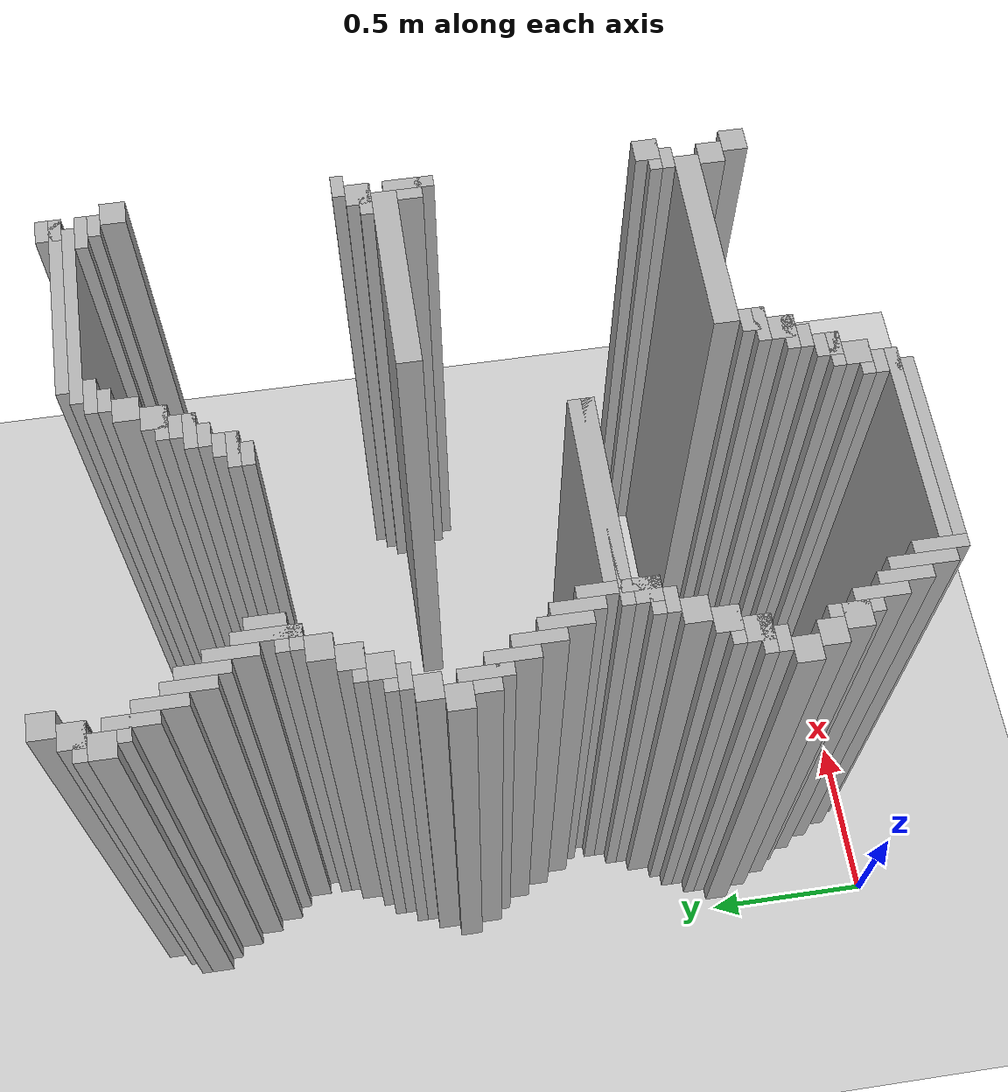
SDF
<sdf version="1.6">
 <world name="slam_world">
  <model name="ground_plane">
   <static>true</static>
   <link name="link">
    <collision name="collision">
     <geometry><plane><normal>0 0 1</normal><size>100 100</size></plane></geometry>
    </collision>
    <visual name="visual">
     <geometry><plane><normal>0 0 1</normal><size>100 100</size></plane></geometry>
     <material>
      <ambient>0.8 0.8 0.8 1</ambient>
      <diffuse>0.8 0.8 0.8 1</diffuse>
      <specular>0.8 0.8 0.8 1</specular>
     </material>
    </visual>
   </link>
  </model>
  <model name="wall_4966">
   <static>true</static>
   <pose>0.13921113689095127 2.296983758700696 1.0 0 0 0</pose>
   <link name="link">
    <collision name="collision">
     <geometry><box><size>0.06960556844547564 0.06960556844547564 2.0</size></box></geometry>
    </collision>
    <visual name="visual">
     <geometry><box><size>0.06960556844547564 0.06960556844547564 2.0</size></box></geometry>
     <material><ambient>0.5 0.5 0.5 1</ambient><diffuse>0.7 0.7 0.7 1</diffuse></material>
    </visual>
   </link>
  </model>
  <model name="wall_4979">
   <static>true</static>
   <pose>0.10440835266821345 2.2273781902552203 1.0 0 0 0</pose>
   <link name="link">
    <collision name="collision">
     <geometry><box><size>0.06960556844547564 0.06960556844547564 2.0</size></box></geometry>
    </collision>
    <visual name="visual">
     <geometry><box><size>0.06960556844547564 0.06960556844547564 2.0</size></box></geometry>
     <material><ambient>0.5 0.5 0.5 1</ambient><diffuse>0.7 0.7 0.7 1</diffuse></material>
    </visual>
   </link>
  </model>
  <model name="wall_4980">
   <static>true</static>
   <pose>1.5661252900232019 2.2273781902552203 1.0 0 0 0</pose>
   <link name="link">
    <collision name="collision">
     <geometry><box><size>0.06960556844547564 0.06960556844547564 2.0</size></box></geometry>
    </collision>
    <visual name="visual">
     <geometry><box><size>0.06960556844547564 0.06960556844547564 2.0</size></box></geometry>
     <material><ambient>0.5 0.5 0.5 1</ambient><diffuse>0.7 0.7 0.7 1</diffuse></material>
    </visual>
   </link>
  </model>
  <model name="wall_4992">
   <static>true</static>
   <pose>0.08700696055684454 2.2099767981438516 1.0 0 0 0</pose>
   <link name="link">
    <collision name="collision">
     <geometry><box><size>0.10440835266821345 0.03480278422273782 2.0</size></box></geometry>
    </collision>
    <visual name="visual">
     <geometry><box><size>0.10440835266821345 0.03480278422273782 2.0</size></box></geometry>
     <material><ambient>0.5 0.5 0.5 1</ambient><diffuse>0.7 0.7 0.7 1</diffuse></material>
    </visual>
   </link>
  </model>
  <model name="wall_4993">
   <static>true</static>
   <pose>1.322505800464037 2.2099767981438516 1.0 0 0 0</pose>
   <link name="link">
    <collision name="collision">
     <geometry><box><size>0.5568445475638051 0.03480278422273782 2.0</size></box></geometry>
    </collision>
    <visual name="visual">
     <geometry><box><size>0.5568445475638051 0.03480278422273782 2.0</size></box></geometry>
     <material><ambient>0.5 0.5 0.5 1</ambient><diffuse>0.7 0.7 0.7 1</diffuse></material>
    </visual>
   </link>
  </model>
  <model name="wall_5004">
   <static>true</static>
   <pose>0.06960556844547564 2.1577726218097446 1.0 0 0 0</pose>
   <link name="link">
    <collision name="collision">
     <geometry><box><size>0.06960556844547564 0.06960556844547564 2.0</size></box></geometry>
    </collision>
    <visual name="visual">
     <geometry><box><size>0.06960556844547564 0.06960556844547564 2.0</size></box></geometry>
     <material><ambient>0.5 0.5 0.5 1</ambient><diffuse>0.7 0.7 0.7 1</diffuse></material>
    </visual>
   </link>
  </model>
  <model name="wall_5005">
   <static>true</static>
   <pose>1.2877030162412992 2.1751740139211138 1.0 0 0 0</pose>
   <link name="link">
    <collision name="collision">
     <geometry><box><size>0.5568445475638051 0.03480278422273782 2.0</size></box></geometry>
    </collision>
    <visual name="visual">
     <geometry><box><size>0.5568445475638051 0.03480278422273782 2.0</size></box></geometry>
     <material><ambient>0.5 0.5 0.5 1</ambient><diffuse>0.7 0.7 0.7 1</diffuse></material>
    </visual>
   </link>
  </model>
  <model name="wall_5015">
   <static>true</static>
   <pose>0.12180974477958237 2.088167053364269 1.0 0 0 0</pose>
   <link name="link">
    <collision name="collision">
     <geometry><box><size>0.03480278422273782 0.13921113689095127 2.0</size></box></geometry>
    </collision>
    <visual name="visual">
     <geometry><box><size>0.03480278422273782 0.13921113689095127 2.0</size></box></geometry>
     <material><ambient>0.5 0.5 0.5 1</ambient><diffuse>0.7 0.7 0.7 1</diffuse></material>
    </visual>
   </link>
  </model>
  <model name="wall_5016">
   <static>true</static>
   <pose>1.0266821345707655 2.140371229698376 1.0 0 0 0</pose>
   <link name="link">
    <collision name="collision">
     <geometry><box><size>0.10440835266821345 0.03480278422273782 2.0</size></box></geometry>
    </collision>
    <visual name="visual">
     <geometry><box><size>0.10440835266821345 0.03480278422273782 2.0</size></box></geometry>
     <material><ambient>0.5 0.5 0.5 1</ambient><diffuse>0.7 0.7 0.7 1</diffuse></material>
    </visual>
   </link>
  </model>
  <model name="wall_5017">
   <static>true</static>
   <pose>1.548723897911833 2.140371229698376 1.0 0 0 0</pose>
   <link name="link">
    <collision name="collision">
     <geometry><box><size>0.10440835266821345 0.03480278422273782 2.0</size></box></geometry>
    </collision>
    <visual name="visual">
     <geometry><box><size>0.10440835266821345 0.03480278422273782 2.0</size></box></geometry>
     <material><ambient>0.5 0.5 0.5 1</ambient><diffuse>0.7 0.7 0.7 1</diffuse></material>
    </visual>
   </link>
  </model>
  <model name="wall_5031">
   <static>true</static>
   <pose>0.10440835266821345 2.105568445475638 1.0 0 0 0</pose>
   <link name="link">
    <collision name="collision">
     <geometry><box><size>0.06960556844547564 0.03480278422273782 2.0</size></box></geometry>
    </collision>
    <visual name="visual">
     <geometry><box><size>0.06960556844547564 0.03480278422273782 2.0</size></box></geometry>
     <material><ambient>0.5 0.5 0.5 1</ambient><diffuse>0.7 0.7 0.7 1</diffuse></material>
    </visual>
   </link>
  </model>
  <model name="wall_5032">
   <static>true</static>
   <pose>1.0092807424593968 2.105568445475638 1.0 0 0 0</pose>
   <link name="link">
    <collision name="collision">
     <geometry><box><size>0.06960556844547564 0.03480278422273782 2.0</size></box></geometry>
    </collision>
    <visual name="visual">
     <geometry><box><size>0.06960556844547564 0.03480278422273782 2.0</size></box></geometry>
     <material><ambient>0.5 0.5 0.5 1</ambient><diffuse>0.7 0.7 0.7 1</diffuse></material>
    </visual>
   </link>
  </model>
  <model name="wall_5033">
   <static>true</static>
   <pose>1.5661252900232019 2.105568445475638 1.0 0 0 0</pose>
   <link name="link">
    <collision name="collision">
     <geometry><box><size>0.06960556844547564 0.03480278422273782 2.0</size></box></geometry>
    </collision>
    <visual name="visual">
     <geometry><box><size>0.06960556844547564 0.03480278422273782 2.0</size></box></geometry>
     <material><ambient>0.5 0.5 0.5 1</ambient><diffuse>0.7 0.7 0.7 1</diffuse></material>
    </visual>
   </link>
  </model>
  <model name="wall_5044">
   <static>true</static>
   <pose>0.15661252900232017 2.0185614849187936 1.0 0 0 0</pose>
   <link name="link">
    <collision name="collision">
     <geometry><box><size>0.03480278422273782 0.13921113689095127 2.0</size></box></geometry>
    </collision>
    <visual name="visual">
     <geometry><box><size>0.03480278422273782 0.13921113689095127 2.0</size></box></geometry>
     <material><ambient>0.5 0.5 0.5 1</ambient><diffuse>0.7 0.7 0.7 1</diffuse></material>
    </visual>
   </link>
  </model>
  <model name="wall_5045">
   <static>true</static>
   <pose>0.974477958236659 2.053364269141531 1.0 0 0 0</pose>
   <link name="link">
    <collision name="collision">
     <geometry><box><size>0.06960556844547564 0.06960556844547564 2.0</size></box></geometry>
    </collision>
    <visual name="visual">
     <geometry><box><size>0.06960556844547564 0.06960556844547564 2.0</size></box></geometry>
     <material><ambient>0.5 0.5 0.5 1</ambient><diffuse>0.7 0.7 0.7 1</diffuse></material>
    </visual>
   </link>
  </model>
  <model name="wall_5046">
   <static>true</static>
   <pose>1.6009280742459395 2.053364269141531 1.0 0 0 0</pose>
   <link name="link">
    <collision name="collision">
     <geometry><box><size>0.06960556844547564 0.06960556844547564 2.0</size></box></geometry>
    </collision>
    <visual name="visual">
     <geometry><box><size>0.06960556844547564 0.06960556844547564 2.0</size></box></geometry>
     <material><ambient>0.5 0.5 0.5 1</ambient><diffuse>0.7 0.7 0.7 1</diffuse></material>
    </visual>
   </link>
  </model>
  <model name="wall_5057">
   <static>true</static>
   <pose>0.191415313225058 1.948955916473318 1.0 0 0 0</pose>
   <link name="link">
    <collision name="collision">
     <geometry><box><size>0.03480278422273782 0.13921113689095127 2.0</size></box></geometry>
    </collision>
    <visual name="visual">
     <geometry><box><size>0.03480278422273782 0.13921113689095127 2.0</size></box></geometry>
     <material><ambient>0.5 0.5 0.5 1</ambient><diffuse>0.7 0.7 0.7 1</diffuse></material>
    </visual>
   </link>
  </model>
  <model name="wall_5058">
   <static>true</static>
   <pose>0.9396751740139211 1.9837587006960555 1.0 0 0 0</pose>
   <link name="link">
    <collision name="collision">
     <geometry><box><size>0.06960556844547564 0.06960556844547564 2.0</size></box></geometry>
    </collision>
    <visual name="visual">
     <geometry><box><size>0.06960556844547564 0.06960556844547564 2.0</size></box></geometry>
     <material><ambient>0.5 0.5 0.5 1</ambient><diffuse>0.7 0.7 0.7 1</diffuse></material>
    </visual>
   </link>
  </model>
  <model name="wall_5070">
   <static>true</static>
   <pose>0.2262180974477958 1.91415313225058 1.0 0 0 0</pose>
   <link name="link">
    <collision name="collision">
     <geometry><box><size>0.03480278422273782 0.13921113689095127 2.0</size></box></geometry>
    </collision>
    <visual name="visual">
     <geometry><box><size>0.03480278422273782 0.13921113689095127 2.0</size></box></geometry>
     <material><ambient>0.5 0.5 0.5 1</ambient><diffuse>0.7 0.7 0.7 1</diffuse></material>
    </visual>
   </link>
  </model>
  <model name="wall_5071">
   <static>true</static>
   <pose>0.9222737819025522 1.9663573085846866 1.0 0 0 0</pose>
   <link name="link">
    <collision name="collision">
     <geometry><box><size>0.10440835266821345 0.03480278422273782 2.0</size></box></geometry>
    </collision>
    <visual name="visual">
     <geometry><box><size>0.10440835266821345 0.03480278422273782 2.0</size></box></geometry>
     <material><ambient>0.5 0.5 0.5 1</ambient><diffuse>0.7 0.7 0.7 1</diffuse></material>
    </visual>
   </link>
  </model>
  <model name="wall_5083">
   <static>true</static>
   <pose>0.9048723897911832 1.91415313225058 1.0 0 0 0</pose>
   <link name="link">
    <collision name="collision">
     <geometry><box><size>0.06960556844547564 0.06960556844547564 2.0</size></box></geometry>
    </collision>
    <visual name="visual">
     <geometry><box><size>0.06960556844547564 0.06960556844547564 2.0</size></box></geometry>
     <material><ambient>0.5 0.5 0.5 1</ambient><diffuse>0.7 0.7 0.7 1</diffuse></material>
    </visual>
   </link>
  </model>
  <model name="wall_5093">
   <static>true</static>
   <pose>0.2610208816705336 1.8445475638051043 1.0 0 0 0</pose>
   <link name="link">
    <collision name="collision">
     <geometry><box><size>0.03480278422273782 0.13921113689095127 2.0</size></box></geometry>
    </collision>
    <visual name="visual">
     <geometry><box><size>0.03480278422273782 0.13921113689095127 2.0</size></box></geometry>
     <material><ambient>0.5 0.5 0.5 1</ambient><diffuse>0.7 0.7 0.7 1</diffuse></material>
    </visual>
   </link>
  </model>
  <model name="wall_5094">
   <static>true</static>
   <pose>0.8874709976798143 1.896751740139211 1.0 0 0 0</pose>
   <link name="link">
    <collision name="collision">
     <geometry><box><size>0.10440835266821345 0.03480278422273782 2.0</size></box></geometry>
    </collision>
    <visual name="visual">
     <geometry><box><size>0.10440835266821345 0.03480278422273782 2.0</size></box></geometry>
     <material><ambient>0.5 0.5 0.5 1</ambient><diffuse>0.7 0.7 0.7 1</diffuse></material>
    </visual>
   </link>
  </model>
  <model name="wall_5106">
   <static>true</static>
   <pose>0.8700696055684455 1.8619489559164732 1.0 0 0 0</pose>
   <link name="link">
    <collision name="collision">
     <geometry><box><size>0.06960556844547564 0.03480278422273782 2.0</size></box></geometry>
    </collision>
    <visual name="visual">
     <geometry><box><size>0.06960556844547564 0.03480278422273782 2.0</size></box></geometry>
     <material><ambient>0.5 0.5 0.5 1</ambient><diffuse>0.7 0.7 0.7 1</diffuse></material>
    </visual>
   </link>
  </model>
  <model name="wall_5112">
   <static>true</static>
   <pose>0.29582366589327147 1.75754060324826 1.0 0 0 0</pose>
   <link name="link">
    <collision name="collision">
     <geometry><box><size>0.03480278422273782 0.17401392111368907 2.0</size></box></geometry>
    </collision>
    <visual name="visual">
     <geometry><box><size>0.03480278422273782 0.17401392111368907 2.0</size></box></geometry>
     <material><ambient>0.5 0.5 0.5 1</ambient><diffuse>0.7 0.7 0.7 1</diffuse></material>
    </visual>
   </link>
  </model>
  <model name="wall_5113">
   <static>true</static>
   <pose>0.8352668213457076 1.8097447795823665 1.0 0 0 0</pose>
   <link name="link">
    <collision name="collision">
     <geometry><box><size>0.06960556844547564 0.06960556844547564 2.0</size></box></geometry>
    </collision>
    <visual name="visual">
     <geometry><box><size>0.06960556844547564 0.06960556844547564 2.0</size></box></geometry>
     <material><ambient>0.5 0.5 0.5 1</ambient><diffuse>0.7 0.7 0.7 1</diffuse></material>
    </visual>
   </link>
  </model>
  <model name="wall_5125">
   <static>true</static>
   <pose>0.3306264501160093 1.75754060324826 1.0 0 0 0</pose>
   <link name="link">
    <collision name="collision">
     <geometry><box><size>0.03480278422273782 0.10440835266821345 2.0</size></box></geometry>
    </collision>
    <visual name="visual">
     <geometry><box><size>0.03480278422273782 0.10440835266821345 2.0</size></box></geometry>
     <material><ambient>0.5 0.5 0.5 1</ambient><diffuse>0.7 0.7 0.7 1</diffuse></material>
    </visual>
   </link>
  </model>
  <model name="wall_5126">
   <static>true</static>
   <pose>0.8178654292343387 1.7923433874709975 1.0 0 0 0</pose>
   <link name="link">
    <collision name="collision">
     <geometry><box><size>0.10440835266821345 0.03480278422273782 2.0</size></box></geometry>
    </collision>
    <visual name="visual">
     <geometry><box><size>0.10440835266821345 0.03480278422273782 2.0</size></box></geometry>
     <material><ambient>0.5 0.5 0.5 1</ambient><diffuse>0.7 0.7 0.7 1</diffuse></material>
    </visual>
   </link>
  </model>
  <model name="wall_5138">
   <static>true</static>
   <pose>0.8004640371229698 1.75754060324826 1.0 0 0 0</pose>
   <link name="link">
    <collision name="collision">
     <geometry><box><size>0.06960556844547564 0.03480278422273782 2.0</size></box></geometry>
    </collision>
    <visual name="visual">
     <geometry><box><size>0.06960556844547564 0.03480278422273782 2.0</size></box></geometry>
     <material><ambient>0.5 0.5 0.5 1</ambient><diffuse>0.7 0.7 0.7 1</diffuse></material>
    </visual>
   </link>
  </model>
  <model name="wall_5149">
   <static>true</static>
   <pose>0.29582366589327147 1.722737819025522 1.0 0 0 0</pose>
   <link name="link">
    <collision name="collision">
     <geometry><box><size>0.10440835266821345 0.03480278422273782 2.0</size></box></geometry>
    </collision>
    <visual name="visual">
     <geometry><box><size>0.10440835266821345 0.03480278422273782 2.0</size></box></geometry>
     <material><ambient>0.5 0.5 0.5 1</ambient><diffuse>0.7 0.7 0.7 1</diffuse></material>
    </visual>
   </link>
  </model>
  <model name="wall_5162">
   <static>true</static>
   <pose>0.27842227378190254 1.6879350348027842 1.0 0 0 0</pose>
   <link name="link">
    <collision name="collision">
     <geometry><box><size>0.06960556844547564 0.03480278422273782 2.0</size></box></geometry>
    </collision>
    <visual name="visual">
     <geometry><box><size>0.06960556844547564 0.03480278422273782 2.0</size></box></geometry>
     <material><ambient>0.5 0.5 0.5 1</ambient><diffuse>0.7 0.7 0.7 1</diffuse></material>
    </visual>
   </link>
  </model>
  <model name="wall_5178">
   <static>true</static>
   <pose>0.24361948955916474 1.6357308584686774 1.0 0 0 0</pose>
   <link name="link">
    <collision name="collision">
     <geometry><box><size>0.06960556844547564 0.06960556844547564 2.0</size></box></geometry>
    </collision>
    <visual name="visual">
     <geometry><box><size>0.06960556844547564 0.06960556844547564 2.0</size></box></geometry>
     <material><ambient>0.5 0.5 0.5 1</ambient><diffuse>0.7 0.7 0.7 1</diffuse></material>
    </visual>
   </link>
  </model>
  <model name="wall_5194">
   <static>true</static>
   <pose>0.2088167053364269 1.5661252900232019 1.0 0 0 0</pose>
   <link name="link">
    <collision name="collision">
     <geometry><box><size>0.06960556844547564 0.06960556844547564 2.0</size></box></geometry>
    </collision>
    <visual name="visual">
     <geometry><box><size>0.06960556844547564 0.06960556844547564 2.0</size></box></geometry>
     <material><ambient>0.5 0.5 0.5 1</ambient><diffuse>0.7 0.7 0.7 1</diffuse></material>
    </visual>
   </link>
  </model>
  <model name="wall_5210">
   <static>true</static>
   <pose>0.191415313225058 1.548723897911833 1.0 0 0 0</pose>
   <link name="link">
    <collision name="collision">
     <geometry><box><size>0.10440835266821345 0.03480278422273782 2.0</size></box></geometry>
    </collision>
    <visual name="visual">
     <geometry><box><size>0.10440835266821345 0.03480278422273782 2.0</size></box></geometry>
     <material><ambient>0.5 0.5 0.5 1</ambient><diffuse>0.7 0.7 0.7 1</diffuse></material>
    </visual>
   </link>
  </model>
  <model name="wall_5226">
   <static>true</static>
   <pose>0.17401392111368907 1.4965197215777262 1.0 0 0 0</pose>
   <link name="link">
    <collision name="collision">
     <geometry><box><size>0.06960556844547564 0.06960556844547564 2.0</size></box></geometry>
    </collision>
    <visual name="visual">
     <geometry><box><size>0.06960556844547564 0.06960556844547564 2.0</size></box></geometry>
     <material><ambient>0.5 0.5 0.5 1</ambient><diffuse>0.7 0.7 0.7 1</diffuse></material>
    </visual>
   </link>
  </model>
  <model name="wall_5239">
   <static>true</static>
   <pose>0.15661252900232017 1.4791183294663572 1.0 0 0 0</pose>
   <link name="link">
    <collision name="collision">
     <geometry><box><size>0.10440835266821345 0.03480278422273782 2.0</size></box></geometry>
    </collision>
    <visual name="visual">
     <geometry><box><size>0.10440835266821345 0.03480278422273782 2.0</size></box></geometry>
     <material><ambient>0.5 0.5 0.5 1</ambient><diffuse>0.7 0.7 0.7 1</diffuse></material>
    </visual>
   </link>
  </model>
  <model name="wall_5255">
   <static>true</static>
   <pose>0.13921113689095127 1.4443155452436194 1.0 0 0 0</pose>
   <link name="link">
    <collision name="collision">
     <geometry><box><size>0.06960556844547564 0.03480278422273782 2.0</size></box></geometry>
    </collision>
    <visual name="visual">
     <geometry><box><size>0.06960556844547564 0.03480278422273782 2.0</size></box></geometry>
     <material><ambient>0.5 0.5 0.5 1</ambient><diffuse>0.7 0.7 0.7 1</diffuse></material>
    </visual>
   </link>
  </model>
  <model name="wall_5256">
   <static>true</static>
   <pose>1.6009280742459395 1.4443155452436194 1.0 0 0 0</pose>
   <link name="link">
    <collision name="collision">
     <geometry><box><size>0.06960556844547564 0.03480278422273782 2.0</size></box></geometry>
    </collision>
    <visual name="visual">
     <geometry><box><size>0.06960556844547564 0.03480278422273782 2.0</size></box></geometry>
     <material><ambient>0.5 0.5 0.5 1</ambient><diffuse>0.7 0.7 0.7 1</diffuse></material>
    </visual>
   </link>
  </model>
  <model name="wall_5265">
   <static>true</static>
   <pose>0.10440835266821345 1.3921113689095126 1.0 0 0 0</pose>
   <link name="link">
    <collision name="collision">
     <geometry><box><size>0.06960556844547564 0.06960556844547564 2.0</size></box></geometry>
    </collision>
    <visual name="visual">
     <geometry><box><size>0.06960556844547564 0.06960556844547564 2.0</size></box></geometry>
     <material><ambient>0.5 0.5 0.5 1</ambient><diffuse>0.7 0.7 0.7 1</diffuse></material>
    </visual>
   </link>
  </model>
  <model name="wall_5266">
   <static>true</static>
   <pose>1.5661252900232019 1.3921113689095126 1.0 0 0 0</pose>
   <link name="link">
    <collision name="collision">
     <geometry><box><size>0.06960556844547564 0.06960556844547564 2.0</size></box></geometry>
    </collision>
    <visual name="visual">
     <geometry><box><size>0.06960556844547564 0.06960556844547564 2.0</size></box></geometry>
     <material><ambient>0.5 0.5 0.5 1</ambient><diffuse>0.7 0.7 0.7 1</diffuse></material>
    </visual>
   </link>
  </model>
  <model name="wall_5281">
   <static>true</static>
   <pose>1.548723897911833 1.3747099767981439 1.0 0 0 0</pose>
   <link name="link">
    <collision name="collision">
     <geometry><box><size>0.10440835266821345 0.03480278422273782 2.0</size></box></geometry>
    </collision>
    <visual name="visual">
     <geometry><box><size>0.10440835266821345 0.03480278422273782 2.0</size></box></geometry>
     <material><ambient>0.5 0.5 0.5 1</ambient><diffuse>0.7 0.7 0.7 1</diffuse></material>
    </visual>
   </link>
  </model>
  <model name="wall_5293">
   <static>true</static>
   <pose>0.06960556844547564 1.322505800464037 1.0 0 0 0</pose>
   <link name="link">
    <collision name="collision">
     <geometry><box><size>0.06960556844547564 0.06960556844547564 2.0</size></box></geometry>
    </collision>
    <visual name="visual">
     <geometry><box><size>0.06960556844547564 0.06960556844547564 2.0</size></box></geometry>
     <material><ambient>0.5 0.5 0.5 1</ambient><diffuse>0.7 0.7 0.7 1</diffuse></material>
    </visual>
   </link>
  </model>
  <model name="wall_5294">
   <static>true</static>
   <pose>1.2877030162412992 1.322505800464037 1.0 0 0 0</pose>
   <link name="link">
    <collision name="collision">
     <geometry><box><size>0.5568445475638051 0.06960556844547564 2.0</size></box></geometry>
    </collision>
    <visual name="visual">
     <geometry><box><size>0.5568445475638051 0.06960556844547564 2.0</size></box></geometry>
     <material><ambient>0.5 0.5 0.5 1</ambient><diffuse>0.7 0.7 0.7 1</diffuse></material>
    </visual>
   </link>
  </model>
  <model name="wall_5306">
   <static>true</static>
   <pose>0.12180974477958237 1.2529002320185614 1.0 0 0 0</pose>
   <link name="link">
    <collision name="collision">
     <geometry><box><size>0.03480278422273782 0.13921113689095127 2.0</size></box></geometry>
    </collision>
    <visual name="visual">
     <geometry><box><size>0.03480278422273782 0.13921113689095127 2.0</size></box></geometry>
     <material><ambient>0.5 0.5 0.5 1</ambient><diffuse>0.7 0.7 0.7 1</diffuse></material>
    </visual>
   </link>
  </model>
  <model name="wall_5307">
   <static>true</static>
   <pose>1.5835266821345706 1.2529002320185614 1.0 0 0 0</pose>
   <link name="link">
    <collision name="collision">
     <geometry><box><size>0.03480278422273782 0.13921113689095127 2.0</size></box></geometry>
    </collision>
    <visual name="visual">
     <geometry><box><size>0.03480278422273782 0.13921113689095127 2.0</size></box></geometry>
     <material><ambient>0.5 0.5 0.5 1</ambient><diffuse>0.7 0.7 0.7 1</diffuse></material>
    </visual>
   </link>
  </model>
  <model name="wall_5317">
   <static>true</static>
   <pose>0.10440835266821345 1.2529002320185614 1.0 0 0 0</pose>
   <link name="link">
    <collision name="collision">
     <geometry><box><size>0.06960556844547564 0.06960556844547564 2.0</size></box></geometry>
    </collision>
    <visual name="visual">
     <geometry><box><size>0.06960556844547564 0.06960556844547564 2.0</size></box></geometry>
     <material><ambient>0.5 0.5 0.5 1</ambient><diffuse>0.7 0.7 0.7 1</diffuse></material>
    </visual>
   </link>
  </model>
  <model name="wall_5318">
   <static>true</static>
   <pose>1.5661252900232019 1.2529002320185614 1.0 0 0 0</pose>
   <link name="link">
    <collision name="collision">
     <geometry><box><size>0.06960556844547564 0.06960556844547564 2.0</size></box></geometry>
    </collision>
    <visual name="visual">
     <geometry><box><size>0.06960556844547564 0.06960556844547564 2.0</size></box></geometry>
     <material><ambient>0.5 0.5 0.5 1</ambient><diffuse>0.7 0.7 0.7 1</diffuse></material>
    </visual>
   </link>
  </model>
  <model name="wall_5331">
   <static>true</static>
   <pose>0.15661252900232017 1.1832946635730859 1.0 0 0 0</pose>
   <link name="link">
    <collision name="collision">
     <geometry><box><size>0.03480278422273782 0.13921113689095127 2.0</size></box></geometry>
    </collision>
    <visual name="visual">
     <geometry><box><size>0.03480278422273782 0.13921113689095127 2.0</size></box></geometry>
     <material><ambient>0.5 0.5 0.5 1</ambient><diffuse>0.7 0.7 0.7 1</diffuse></material>
    </visual>
   </link>
  </model>
  <model name="wall_5354">
   <static>true</static>
   <pose>0.191415313225058 1.1136890951276102 1.0 0 0 0</pose>
   <link name="link">
    <collision name="collision">
     <geometry><box><size>0.03480278422273782 0.13921113689095127 2.0</size></box></geometry>
    </collision>
    <visual name="visual">
     <geometry><box><size>0.03480278422273782 0.13921113689095127 2.0</size></box></geometry>
     <material><ambient>0.5 0.5 0.5 1</ambient><diffuse>0.7 0.7 0.7 1</diffuse></material>
    </visual>
   </link>
  </model>
  <model name="wall_5368">
   <static>true</static>
   <pose>0.2262180974477958 1.0440835266821344 1.0 0 0 0</pose>
   <link name="link">
    <collision name="collision">
     <geometry><box><size>0.03480278422273782 0.13921113689095127 2.0</size></box></geometry>
    </collision>
    <visual name="visual">
     <geometry><box><size>0.03480278422273782 0.13921113689095127 2.0</size></box></geometry>
     <material><ambient>0.5 0.5 0.5 1</ambient><diffuse>0.7 0.7 0.7 1</diffuse></material>
    </visual>
   </link>
  </model>
  <model name="wall_5382">
   <static>true</static>
   <pose>0.2610208816705336 1.0092807424593968 1.0 0 0 0</pose>
   <link name="link">
    <collision name="collision">
     <geometry><box><size>0.03480278422273782 0.13921113689095127 2.0</size></box></geometry>
    </collision>
    <visual name="visual">
     <geometry><box><size>0.03480278422273782 0.13921113689095127 2.0</size></box></geometry>
     <material><ambient>0.5 0.5 0.5 1</ambient><diffuse>0.7 0.7 0.7 1</diffuse></material>
    </visual>
   </link>
  </model>
  <model name="wall_5402">
   <static>true</static>
   <pose>0.29582366589327147 0.9048723897911832 1.0 0 0 0</pose>
   <link name="link">
    <collision name="collision">
     <geometry><box><size>0.03480278422273782 0.2088167053364269 2.0</size></box></geometry>
    </collision>
    <visual name="visual">
     <geometry><box><size>0.03480278422273782 0.2088167053364269 2.0</size></box></geometry>
     <material><ambient>0.5 0.5 0.5 1</ambient><diffuse>0.7 0.7 0.7 1</diffuse></material>
    </visual>
   </link>
  </model>
  <model name="wall_5422">
   <static>true</static>
   <pose>0.574245939675174 0.9048723897911832 1.0 0 0 0</pose>
   <link name="link">
    <collision name="collision">
     <geometry><box><size>0.5220417633410672 0.06960556844547564 2.0</size></box></geometry>
    </collision>
    <visual name="visual">
     <geometry><box><size>0.5220417633410672 0.06960556844547564 2.0</size></box></geometry>
     <material><ambient>0.5 0.5 0.5 1</ambient><diffuse>0.7 0.7 0.7 1</diffuse></material>
    </visual>
   </link>
  </model>
  <model name="wall_5437">
   <static>true</static>
   <pose>0.5394431554524362 0.8874709976798143 1.0 0 0 0</pose>
   <link name="link">
    <collision name="collision">
     <geometry><box><size>0.5916473317865429 0.03480278422273782 2.0</size></box></geometry>
    </collision>
    <visual name="visual">
     <geometry><box><size>0.5916473317865429 0.03480278422273782 2.0</size></box></geometry>
     <material><ambient>0.5 0.5 0.5 1</ambient><diffuse>0.7 0.7 0.7 1</diffuse></material>
    </visual>
   </link>
  </model>
  <model name="wall_5447">
   <static>true</static>
   <pose>0.27842227378190254 0.8352668213457076 1.0 0 0 0</pose>
   <link name="link">
    <collision name="collision">
     <geometry><box><size>0.06960556844547564 0.06960556844547564 2.0</size></box></geometry>
    </collision>
    <visual name="visual">
     <geometry><box><size>0.06960556844547564 0.06960556844547564 2.0</size></box></geometry>
     <material><ambient>0.5 0.5 0.5 1</ambient><diffuse>0.7 0.7 0.7 1</diffuse></material>
    </visual>
   </link>
  </model>
  <model name="wall_5457">
   <static>true</static>
   <pose>0.2610208816705336 0.8178654292343387 1.0 0 0 0</pose>
   <link name="link">
    <collision name="collision">
     <geometry><box><size>0.10440835266821345 0.03480278422273782 2.0</size></box></geometry>
    </collision>
    <visual name="visual">
     <geometry><box><size>0.10440835266821345 0.03480278422273782 2.0</size></box></geometry>
     <material><ambient>0.5 0.5 0.5 1</ambient><diffuse>0.7 0.7 0.7 1</diffuse></material>
    </visual>
   </link>
  </model>
  <model name="wall_5467">
   <static>true</static>
   <pose>0.24361948955916474 0.7830626450116009 1.0 0 0 0</pose>
   <link name="link">
    <collision name="collision">
     <geometry><box><size>0.06960556844547564 0.03480278422273782 2.0</size></box></geometry>
    </collision>
    <visual name="visual">
     <geometry><box><size>0.06960556844547564 0.03480278422273782 2.0</size></box></geometry>
     <material><ambient>0.5 0.5 0.5 1</ambient><diffuse>0.7 0.7 0.7 1</diffuse></material>
    </visual>
   </link>
  </model>
  <model name="wall_5473">
   <static>true</static>
   <pose>0.2088167053364269 0.7308584686774942 1.0 0 0 0</pose>
   <link name="link">
    <collision name="collision">
     <geometry><box><size>0.06960556844547564 0.06960556844547564 2.0</size></box></geometry>
    </collision>
    <visual name="visual">
     <geometry><box><size>0.06960556844547564 0.06960556844547564 2.0</size></box></geometry>
     <material><ambient>0.5 0.5 0.5 1</ambient><diffuse>0.7 0.7 0.7 1</diffuse></material>
    </visual>
   </link>
  </model>
  <model name="wall_5483">
   <static>true</static>
   <pose>0.17401392111368907 0.6612529002320185 1.0 0 0 0</pose>
   <link name="link">
    <collision name="collision">
     <geometry><box><size>0.06960556844547564 0.06960556844547564 2.0</size></box></geometry>
    </collision>
    <visual name="visual">
     <geometry><box><size>0.06960556844547564 0.06960556844547564 2.0</size></box></geometry>
     <material><ambient>0.5 0.5 0.5 1</ambient><diffuse>0.7 0.7 0.7 1</diffuse></material>
    </visual>
   </link>
  </model>
  <model name="wall_5493">
   <static>true</static>
   <pose>0.15661252900232017 0.6438515081206496 1.0 0 0 0</pose>
   <link name="link">
    <collision name="collision">
     <geometry><box><size>0.10440835266821345 0.03480278422273782 2.0</size></box></geometry>
    </collision>
    <visual name="visual">
     <geometry><box><size>0.10440835266821345 0.03480278422273782 2.0</size></box></geometry>
     <material><ambient>0.5 0.5 0.5 1</ambient><diffuse>0.7 0.7 0.7 1</diffuse></material>
    </visual>
   </link>
  </model>
  <model name="wall_5503">
   <static>true</static>
   <pose>0.13921113689095127 0.5916473317865429 1.0 0 0 0</pose>
   <link name="link">
    <collision name="collision">
     <geometry><box><size>0.06960556844547564 0.06960556844547564 2.0</size></box></geometry>
    </collision>
    <visual name="visual">
     <geometry><box><size>0.06960556844547564 0.06960556844547564 2.0</size></box></geometry>
     <material><ambient>0.5 0.5 0.5 1</ambient><diffuse>0.7 0.7 0.7 1</diffuse></material>
    </visual>
   </link>
  </model>
  <model name="wall_5504">
   <static>true</static>
   <pose>1.6009280742459395 0.5916473317865429 1.0 0 0 0</pose>
   <link name="link">
    <collision name="collision">
     <geometry><box><size>0.06960556844547564 0.06960556844547564 2.0</size></box></geometry>
    </collision>
    <visual name="visual">
     <geometry><box><size>0.06960556844547564 0.06960556844547564 2.0</size></box></geometry>
     <material><ambient>0.5 0.5 0.5 1</ambient><diffuse>0.7 0.7 0.7 1</diffuse></material>
    </visual>
   </link>
  </model>
  <model name="wall_5509">
   <static>true</static>
   <pose>0.12180974477958237 0.574245939675174 1.0 0 0 0</pose>
   <link name="link">
    <collision name="collision">
     <geometry><box><size>0.10440835266821345 0.03480278422273782 2.0</size></box></geometry>
    </collision>
    <visual name="visual">
     <geometry><box><size>0.10440835266821345 0.03480278422273782 2.0</size></box></geometry>
     <material><ambient>0.5 0.5 0.5 1</ambient><diffuse>0.7 0.7 0.7 1</diffuse></material>
    </visual>
   </link>
  </model>
  <model name="wall_5510">
   <static>true</static>
   <pose>1.5835266821345706 0.574245939675174 1.0 0 0 0</pose>
   <link name="link">
    <collision name="collision">
     <geometry><box><size>0.10440835266821345 0.03480278422273782 2.0</size></box></geometry>
    </collision>
    <visual name="visual">
     <geometry><box><size>0.10440835266821345 0.03480278422273782 2.0</size></box></geometry>
     <material><ambient>0.5 0.5 0.5 1</ambient><diffuse>0.7 0.7 0.7 1</diffuse></material>
    </visual>
   </link>
  </model>
  <model name="wall_5519">
   <static>true</static>
   <pose>0.10440835266821345 0.5394431554524362 1.0 0 0 0</pose>
   <link name="link">
    <collision name="collision">
     <geometry><box><size>0.06960556844547564 0.03480278422273782 2.0</size></box></geometry>
    </collision>
    <visual name="visual">
     <geometry><box><size>0.06960556844547564 0.03480278422273782 2.0</size></box></geometry>
     <material><ambient>0.5 0.5 0.5 1</ambient><diffuse>0.7 0.7 0.7 1</diffuse></material>
    </visual>
   </link>
  </model>
  <model name="wall_5520">
   <static>true</static>
   <pose>1.5661252900232019 0.5394431554524362 1.0 0 0 0</pose>
   <link name="link">
    <collision name="collision">
     <geometry><box><size>0.06960556844547564 0.03480278422273782 2.0</size></box></geometry>
    </collision>
    <visual name="visual">
     <geometry><box><size>0.06960556844547564 0.03480278422273782 2.0</size></box></geometry>
     <material><ambient>0.5 0.5 0.5 1</ambient><diffuse>0.7 0.7 0.7 1</diffuse></material>
    </visual>
   </link>
  </model>
  <model name="wall_5525">
   <static>true</static>
   <pose>0.06960556844547564 0.4872389791183295 1.0 0 0 0</pose>
   <link name="link">
    <collision name="collision">
     <geometry><box><size>0.06960556844547564 0.06960556844547564 2.0</size></box></geometry>
    </collision>
    <visual name="visual">
     <geometry><box><size>0.06960556844547564 0.06960556844547564 2.0</size></box></geometry>
     <material><ambient>0.5 0.5 0.5 1</ambient><diffuse>0.7 0.7 0.7 1</diffuse></material>
    </visual>
   </link>
  </model>
  <model name="wall_5526">
   <static>true</static>
   <pose>1.2877030162412992 0.4872389791183295 1.0 0 0 0</pose>
   <link name="link">
    <collision name="collision">
     <geometry><box><size>0.5568445475638051 0.06960556844547564 2.0</size></box></geometry>
    </collision>
    <visual name="visual">
     <geometry><box><size>0.5568445475638051 0.06960556844547564 2.0</size></box></geometry>
     <material><ambient>0.5 0.5 0.5 1</ambient><diffuse>0.7 0.7 0.7 1</diffuse></material>
    </visual>
   </link>
  </model>
  <model name="wall_5536">
   <static>true</static>
   <pose>0.10440835266821345 0.4176334106728538 1.0 0 0 0</pose>
   <link name="link">
    <collision name="collision">
     <geometry><box><size>0.06960556844547564 0.06960556844547564 2.0</size></box></geometry>
    </collision>
    <visual name="visual">
     <geometry><box><size>0.06960556844547564 0.06960556844547564 2.0</size></box></geometry>
     <material><ambient>0.5 0.5 0.5 1</ambient><diffuse>0.7 0.7 0.7 1</diffuse></material>
    </visual>
   </link>
  </model>
  <model name="wall_5537">
   <static>true</static>
   <pose>1.0092807424593968 0.4176334106728538 1.0 0 0 0</pose>
   <link name="link">
    <collision name="collision">
     <geometry><box><size>0.06960556844547564 0.06960556844547564 2.0</size></box></geometry>
    </collision>
    <visual name="visual">
     <geometry><box><size>0.06960556844547564 0.06960556844547564 2.0</size></box></geometry>
     <material><ambient>0.5 0.5 0.5 1</ambient><diffuse>0.7 0.7 0.7 1</diffuse></material>
    </visual>
   </link>
  </model>
  <model name="wall_5538">
   <static>true</static>
   <pose>1.5661252900232019 0.4176334106728538 1.0 0 0 0</pose>
   <link name="link">
    <collision name="collision">
     <geometry><box><size>0.06960556844547564 0.06960556844547564 2.0</size></box></geometry>
    </collision>
    <visual name="visual">
     <geometry><box><size>0.06960556844547564 0.06960556844547564 2.0</size></box></geometry>
     <material><ambient>0.5 0.5 0.5 1</ambient><diffuse>0.7 0.7 0.7 1</diffuse></material>
    </visual>
   </link>
  </model>
  <model name="wall_5556">
   <static>true</static>
   <pose>0.15661252900232017 0.34802784222737815 1.0 0 0 0</pose>
   <link name="link">
    <collision name="collision">
     <geometry><box><size>0.03480278422273782 0.13921113689095127 2.0</size></box></geometry>
    </collision>
    <visual name="visual">
     <geometry><box><size>0.03480278422273782 0.13921113689095127 2.0</size></box></geometry>
     <material><ambient>0.5 0.5 0.5 1</ambient><diffuse>0.7 0.7 0.7 1</diffuse></material>
    </visual>
   </link>
  </model>
  <model name="wall_5557">
   <static>true</static>
   <pose>0.9918793503480278 0.4002320185614849 1.0 0 0 0</pose>
   <link name="link">
    <collision name="collision">
     <geometry><box><size>0.10440835266821345 0.03480278422273782 2.0</size></box></geometry>
    </collision>
    <visual name="visual">
     <geometry><box><size>0.10440835266821345 0.03480278422273782 2.0</size></box></geometry>
     <material><ambient>0.5 0.5 0.5 1</ambient><diffuse>0.7 0.7 0.7 1</diffuse></material>
    </visual>
   </link>
  </model>
  <model name="wall_5576">
   <static>true</static>
   <pose>0.13921113689095127 0.34802784222737815 1.0 0 0 0</pose>
   <link name="link">
    <collision name="collision">
     <geometry><box><size>0.06960556844547564 0.06960556844547564 2.0</size></box></geometry>
    </collision>
    <visual name="visual">
     <geometry><box><size>0.06960556844547564 0.06960556844547564 2.0</size></box></geometry>
     <material><ambient>0.5 0.5 0.5 1</ambient><diffuse>0.7 0.7 0.7 1</diffuse></material>
    </visual>
   </link>
  </model>
  <model name="wall_5577">
   <static>true</static>
   <pose>0.974477958236659 0.34802784222737815 1.0 0 0 0</pose>
   <link name="link">
    <collision name="collision">
     <geometry><box><size>0.06960556844547564 0.06960556844547564 2.0</size></box></geometry>
    </collision>
    <visual name="visual">
     <geometry><box><size>0.06960556844547564 0.06960556844547564 2.0</size></box></geometry>
     <material><ambient>0.5 0.5 0.5 1</ambient><diffuse>0.7 0.7 0.7 1</diffuse></material>
    </visual>
   </link>
  </model>
  <model name="wall_5578">
   <static>true</static>
   <pose>1.6009280742459395 0.34802784222737815 1.0 0 0 0</pose>
   <link name="link">
    <collision name="collision">
     <geometry><box><size>0.06960556844547564 0.06960556844547564 2.0</size></box></geometry>
    </collision>
    <visual name="visual">
     <geometry><box><size>0.06960556844547564 0.06960556844547564 2.0</size></box></geometry>
     <material><ambient>0.5 0.5 0.5 1</ambient><diffuse>0.7 0.7 0.7 1</diffuse></material>
    </visual>
   </link>
  </model>
  <model name="wall_5596">
   <static>true</static>
   <pose>0.191415313225058 0.27842227378190254 1.0 0 0 0</pose>
   <link name="link">
    <collision name="collision">
     <geometry><box><size>0.03480278422273782 0.13921113689095127 2.0</size></box></geometry>
    </collision>
    <visual name="visual">
     <geometry><box><size>0.03480278422273782 0.13921113689095127 2.0</size></box></geometry>
     <material><ambient>0.5 0.5 0.5 1</ambient><diffuse>0.7 0.7 0.7 1</diffuse></material>
    </visual>
   </link>
  </model>
  <model name="wall_5597">
   <static>true</static>
   <pose>0.95707656612529 0.3306264501160093 1.0 0 0 0</pose>
   <link name="link">
    <collision name="collision">
     <geometry><box><size>0.10440835266821345 0.03480278422273782 2.0</size></box></geometry>
    </collision>
    <visual name="visual">
     <geometry><box><size>0.10440835266821345 0.03480278422273782 2.0</size></box></geometry>
     <material><ambient>0.5 0.5 0.5 1</ambient><diffuse>0.7 0.7 0.7 1</diffuse></material>
    </visual>
   </link>
  </model>
  <model name="wall_5616">
   <static>true</static>
   <pose>0.9396751740139211 0.29582366589327147 1.0 0 0 0</pose>
   <link name="link">
    <collision name="collision">
     <geometry><box><size>0.06960556844547564 0.03480278422273782 2.0</size></box></geometry>
    </collision>
    <visual name="visual">
     <geometry><box><size>0.06960556844547564 0.03480278422273782 2.0</size></box></geometry>
     <material><ambient>0.5 0.5 0.5 1</ambient><diffuse>0.7 0.7 0.7 1</diffuse></material>
    </visual>
   </link>
  </model>
  <model name="wall_5626">
   <static>true</static>
   <pose>0.2262180974477958 0.2088167053364269 1.0 0 0 0</pose>
   <link name="link">
    <collision name="collision">
     <geometry><box><size>0.03480278422273782 0.13921113689095127 2.0</size></box></geometry>
    </collision>
    <visual name="visual">
     <geometry><box><size>0.03480278422273782 0.13921113689095127 2.0</size></box></geometry>
     <material><ambient>0.5 0.5 0.5 1</ambient><diffuse>0.7 0.7 0.7 1</diffuse></material>
    </visual>
   </link>
  </model>
  <model name="wall_5627">
   <static>true</static>
   <pose>0.9048723897911832 0.24361948955916474 1.0 0 0 0</pose>
   <link name="link">
    <collision name="collision">
     <geometry><box><size>0.06960556844547564 0.06960556844547564 2.0</size></box></geometry>
    </collision>
    <visual name="visual">
     <geometry><box><size>0.06960556844547564 0.06960556844547564 2.0</size></box></geometry>
     <material><ambient>0.5 0.5 0.5 1</ambient><diffuse>0.7 0.7 0.7 1</diffuse></material>
    </visual>
   </link>
  </model>
  <model name="wall_5646">
   <static>true</static>
   <pose>0.2610208816705336 0.15661252900232017 1.0 0 0 0</pose>
   <link name="link">
    <collision name="collision">
     <geometry><box><size>0.03480278422273782 0.17401392111368907 2.0</size></box></geometry>
    </collision>
    <visual name="visual">
     <geometry><box><size>0.03480278422273782 0.17401392111368907 2.0</size></box></geometry>
     <material><ambient>0.5 0.5 0.5 1</ambient><diffuse>0.7 0.7 0.7 1</diffuse></material>
    </visual>
   </link>
  </model>
  <model name="wall_5647">
   <static>true</static>
   <pose>0.8874709976798143 0.2262180974477958 1.0 0 0 0</pose>
   <link name="link">
    <collision name="collision">
     <geometry><box><size>0.10440835266821345 0.03480278422273782 2.0</size></box></geometry>
    </collision>
    <visual name="visual">
     <geometry><box><size>0.10440835266821345 0.03480278422273782 2.0</size></box></geometry>
     <material><ambient>0.5 0.5 0.5 1</ambient><diffuse>0.7 0.7 0.7 1</diffuse></material>
    </visual>
   </link>
  </model>
  <model name="wall_5666">
   <static>true</static>
   <pose>0.8700696055684455 0.17401392111368907 1.0 0 0 0</pose>
   <link name="link">
    <collision name="collision">
     <geometry><box><size>0.06960556844547564 0.06960556844547564 2.0</size></box></geometry>
    </collision>
    <visual name="visual">
     <geometry><box><size>0.06960556844547564 0.06960556844547564 2.0</size></box></geometry>
     <material><ambient>0.5 0.5 0.5 1</ambient><diffuse>0.7 0.7 0.7 1</diffuse></material>
    </visual>
   </link>
  </model>
  <model name="wall_5676">
   <static>true</static>
   <pose>0.29582366589327147 0.10440835266821345 1.0 0 0 0</pose>
   <link name="link">
    <collision name="collision">
     <geometry><box><size>0.03480278422273782 0.13921113689095127 2.0</size></box></geometry>
    </collision>
    <visual name="visual">
     <geometry><box><size>0.03480278422273782 0.13921113689095127 2.0</size></box></geometry>
     <material><ambient>0.5 0.5 0.5 1</ambient><diffuse>0.7 0.7 0.7 1</diffuse></material>
    </visual>
   </link>
  </model>
  <model name="wall_5677">
   <static>true</static>
   <pose>0.8526682134570766 0.15661252900232017 1.0 0 0 0</pose>
   <link name="link">
    <collision name="collision">
     <geometry><box><size>0.10440835266821345 0.03480278422273782 2.0</size></box></geometry>
    </collision>
    <visual name="visual">
     <geometry><box><size>0.10440835266821345 0.03480278422273782 2.0</size></box></geometry>
     <material><ambient>0.5 0.5 0.5 1</ambient><diffuse>0.7 0.7 0.7 1</diffuse></material>
    </visual>
   </link>
  </model>
  <model name="wall_5696">
   <static>true</static>
   <pose>0.8352668213457076 0.10440835266821345 1.0 0 0 0</pose>
   <link name="link">
    <collision name="collision">
     <geometry><box><size>0.06960556844547564 0.06960556844547564 2.0</size></box></geometry>
    </collision>
    <visual name="visual">
     <geometry><box><size>0.06960556844547564 0.06960556844547564 2.0</size></box></geometry>
     <material><ambient>0.5 0.5 0.5 1</ambient><diffuse>0.7 0.7 0.7 1</diffuse></material>
    </visual>
   </link>
  </model>
  <model name="wall_5706">
   <static>true</static>
   <pose>0.5916473317865429 0.08700696055684454 1.0 0 0 0</pose>
   <link name="link">
    <collision name="collision">
     <geometry><box><size>0.5568445475638051 0.03480278422273782 2.0</size></box></geometry>
    </collision>
    <visual name="visual">
     <geometry><box><size>0.5568445475638051 0.03480278422273782 2.0</size></box></geometry>
     <material><ambient>0.5 0.5 0.5 1</ambient><diffuse>0.7 0.7 0.7 1</diffuse></material>
    </visual>
   </link>
  </model>
  <model name="wall_5717">
   <static>true</static>
   <pose>0.574245939675174 0.052204176334106726 1.0 0 0 0</pose>
   <link name="link">
    <collision name="collision">
     <geometry><box><size>0.5220417633410672 0.03480278422273782 2.0</size></box></geometry>
    </collision>
    <visual name="visual">
     <geometry><box><size>0.5220417633410672 0.03480278422273782 2.0</size></box></geometry>
     <material><ambient>0.5 0.5 0.5 1</ambient><diffuse>0.7 0.7 0.7 1</diffuse></material>
    </visual>
   </link>
  </model>
 </world>
</sdf>
